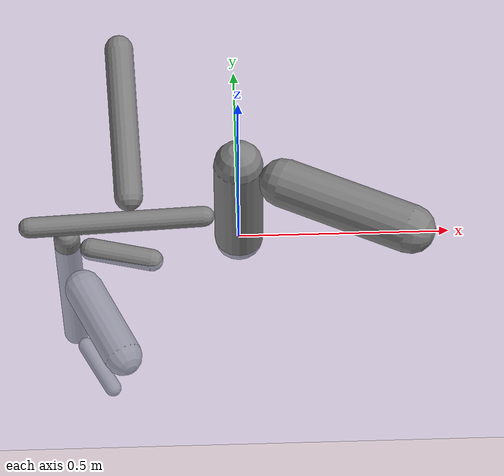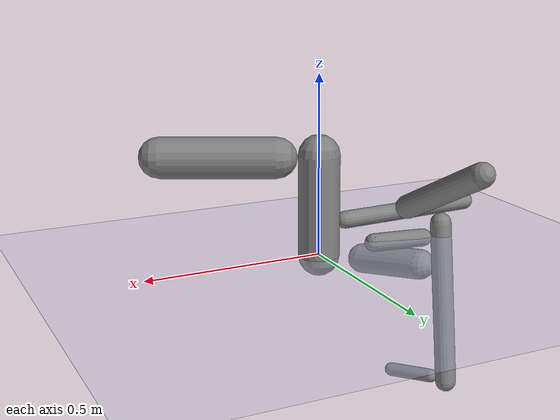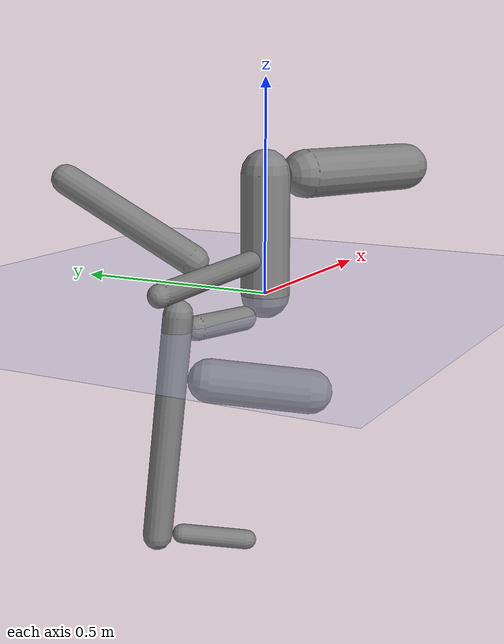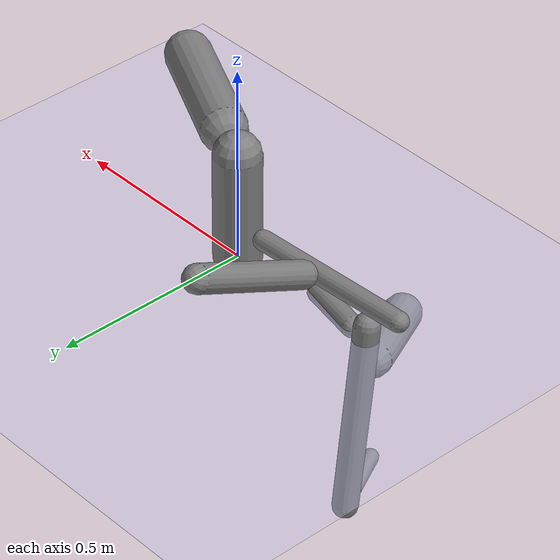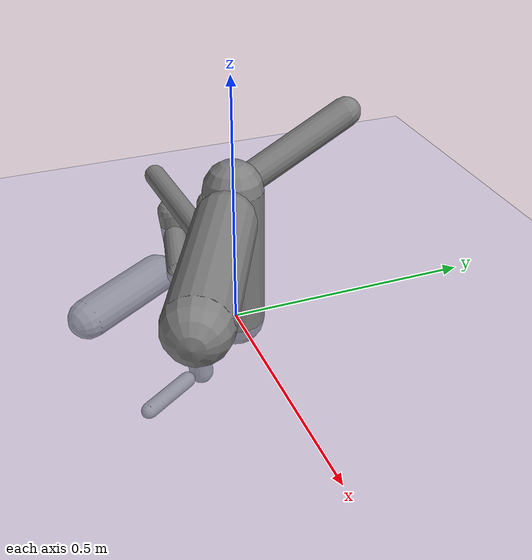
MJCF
<?xml version='1.0' encoding='UTF-8'?>
<mujoco model="robot_model">
  <worldbody>
    <light name="light" pos="0 -3 10" dir="0 0.5 -1" diffuse=".8 .8 .8" specular="0.1 0.1 0.1"/>
    <geom name="floor" type="plane" size="10.0 10.0 0.1" pos="0 0 0" rgba="0.8 0.8 1 1" contype="2" conaffinity="1"/>
    <body name="limb0" pos="0 0 0">
      <geom name="limb0_geom" type="capsule" fromto="0 0 0 0 0 0.2799738255361348" size="0.05756578340912265" density="815.1362099342192" contype="1" conaffinity="2"/>
      <site type="sphere" size="0.01" name="limb0_site0" pos="-0.0820467910820121 -0.004160777248877592 0.08847312475178644" quat="0.7071067811865476 0.035812953632730245 -0.7061992865700869 0.0"/>
      <site type="sphere" size="0.01" name="limb0_site1" pos="0.10282668581799398 -0.050852598181851366 0.2735437953981448" quat="0.7071067811865476 0.3134595625815783 0.6338320776247961 0.0"/>
      <freejoint name="limb0_root"/>
      <body name="limb1" pos="-0.0820467910820121 -0.004160777248877592 0.08847312475178644" quat="0.7071067811865476 0.035812953632730245 -0.7061992865700869 0.0">
        <geom name="limb1_geom" type="capsule" fromto="0 0 0 0 0 0.41232011657988055" size="0.024586441114441637" density="1122.1353599484698" contype="1" conaffinity="2"/>
        <site type="sphere" size="0.01" name="limb1_site0" pos="-0.055592265485965284 0.0035926328195533233 0.3267415901813807" quat="0.7071067811865476 -0.045601430650075464 -0.7056348273169815 0.0"/>
        <site type="sphere" size="0.01" name="limb1_site1" pos="0.023613008096088458 0.05355680802369277 0.174003750487796" quat="0.7071067811865476 -0.6470114650255221 0.28526507694691194 0.0"/>
        <body name="limb2" pos="-0.055592265485965284 0.0035926328195533233 0.3267415901813807" quat="0.7071067811865476 -0.045601430650075464 -0.7056348273169815 0.0">
          <geom name="limb2_geom" type="capsule" fromto="0 0 0 0 0 0.4889589051366479" size="0.03112178980737259" density="785.1601357299012" contype="1" conaffinity="2"/>
          <site type="sphere" size="0.01" name="limb2_site0" pos="-0.03573312300293949 -0.06837867658753931 0.13233594321504516" quat="0.7071067811865476 0.6266946826244069 -0.32749622100154663 0.0"/>
          <site type="sphere" size="0.01" name="limb2_site1" pos="-0.056191404401370305 -0.012275511703749298 0.0373755399778887" quat="0.7071067811865476 0.15091458538187963 -0.6908145828795272 0.0"/>
          <site type="sphere" size="0.01" name="limb2_site2" pos="-0.025581746544241286 -0.04479546105246561 0.4802238243060475" quat="0.7071067811865476 0.6140330594173753 -0.3506613778883241 0.0"/>
          <body name="limb3" pos="-0.03573312300293949 -0.06837867658753931 0.13233594321504516" quat="0.7071067811865476 0.6266946826244069 -0.32749622100154663 0.0">
            <geom name="limb3_geom" type="capsule" fromto="0 0 0 0 0 0.20587440072907823" size="0.04603065339053593" density="1089.820416514438" contype="1" conaffinity="2"/>
            <joint name="joint_limb2_limb3_0" type="hinge" axis="1 0 0" range="-76.8184141901732 76.8184141901732" damping="5.0"/>
          </body>
          <body name="limb4" pos="-0.056191404401370305 -0.012275511703749298 0.0373755399778887" quat="0.7071067811865476 0.15091458538187963 -0.6908145828795272 0.0">
            <geom name="limb4_geom" type="capsule" fromto="0 0 0 0 0 0.14919347938278688" size="0.026394834886599366" density="526.9905097920008" contype="1" conaffinity="2"/>
            <joint name="joint_limb2_limb4_0" type="hinge" axis="0 0 1" range="-36.57311519522722 36.57311519522722" damping="5.0"/>
          </body>
          <body name="limb5" pos="-0.025581746544241286 -0.04479546105246561 0.4802238243060475" quat="0.7071067811865476 0.6140330594173753 -0.3506613778883241 0.0">
            <geom name="limb5_geom" type="capsule" fromto="0 0 0 0 0 0.1374982904060269" size="0.02046366441333544" density="519.5880439387245" contype="1" conaffinity="2"/>
            <joint name="joint_limb2_limb5_0" type="hinge" axis="0 1 0" range="-84.00927034064857 84.00927034064857" damping="5.0"/>
          </body>
          <joint name="joint_limb1_limb2_0" type="hinge" axis="1 0 0" range="-60.6612845033848 60.6612845033848" damping="5.0"/>
        </body>
        <body name="limb6" pos="0.023613008096088458 0.05355680802369277 0.174003750487796" quat="0.7071067811865476 -0.6470114650255221 0.28526507694691194 0.0">
          <geom name="limb6_geom" type="capsule" fromto="0 0 0 0 0 0.3567223817497861" size="0.03394479701557421" density="452.7511375784776" contype="1" conaffinity="2"/>
          <joint name="joint_limb1_limb6_0" type="hinge" axis="1 0 0" range="-48.18281063347258 48.18281063347258" damping="5.0"/>
        </body>
        <joint name="joint_limb0_limb1_0" type="hinge" axis="0 1 0" range="-79.43746025127588 79.43746025127588" damping="5.0"/>
      </body>
      <body name="limb7" pos="0.10282668581799398 -0.050852598181851366 0.2735437953981448" quat="0.7071067811865476 0.3134595625815783 0.6338320776247961 0.0">
        <geom name="limb7_geom" type="capsule" fromto="0 0 0 0 0 0.31417880181991165" size="0.05714827003751167" density="963.189887149966" contype="1" conaffinity="2"/>
        <joint name="joint_limb0_limb7_0" type="hinge" axis="1 0 0" range="-112.68384771594633 112.68384771594633" damping="5.0"/>
      </body>
    </body>
  </worldbody>
  <actuator>
    <position name="position_actuator_joint_limb0_limb1_0" joint="joint_limb0_limb1_0" gear="1.5835672608966855" inheritrange="1" forcerange="-4.742595075934674 4.742595075934674" forcelimited="true" kp="100.0"/>
    <position name="position_actuator_joint_limb1_limb2_0" joint="joint_limb1_limb2_0" gear="0.9597608262960533" inheritrange="1" forcerange="-6.336588271115302 6.336588271115302" forcelimited="true" kp="100.0"/>
    <position name="position_actuator_joint_limb2_limb3_0" joint="joint_limb2_limb3_0" gear="1.4426881968183625" inheritrange="1" forcerange="-9.693587687008968 9.693587687008968" forcelimited="true" kp="100.0"/>
    <position name="position_actuator_joint_limb2_limb4_0" joint="joint_limb2_limb4_0" gear="1.7107518951402347" inheritrange="1" forcerange="-1.0633834804654576 1.0633834804654576" forcelimited="true" kp="100.0"/>
    <position name="position_actuator_joint_limb2_limb5_0" joint="joint_limb2_limb5_0" gear="0.5748400052155112" inheritrange="1" forcerange="-0.5631948907714973 0.5631948907714973" forcelimited="true" kp="100.0"/>
    <position name="position_actuator_joint_limb1_limb6_0" joint="joint_limb1_limb6_0" gear="1.8903065910928873" inheritrange="1" forcerange="-3.2940681953714335 3.2940681953714335" forcelimited="true" kp="100.0"/>
    <position name="position_actuator_joint_limb0_limb7_0" joint="joint_limb0_limb7_0" gear="1.1155539767784568" inheritrange="1" forcerange="-19.289529212287043 19.289529212287043" forcelimited="true" kp="100.0"/>
  </actuator>
  <contact>
    <pair geom1="limb0_geom" geom2="limb1_geom"/>
    <pair geom1="limb1_geom" geom2="limb2_geom"/>
    <pair geom1="limb2_geom" geom2="limb3_geom"/>
    <pair geom1="limb2_geom" geom2="limb4_geom"/>
    <pair geom1="limb2_geom" geom2="limb5_geom"/>
    <pair geom1="limb1_geom" geom2="limb6_geom"/>
    <pair geom1="limb0_geom" geom2="limb7_geom"/>
  </contact>
</mujoco>
